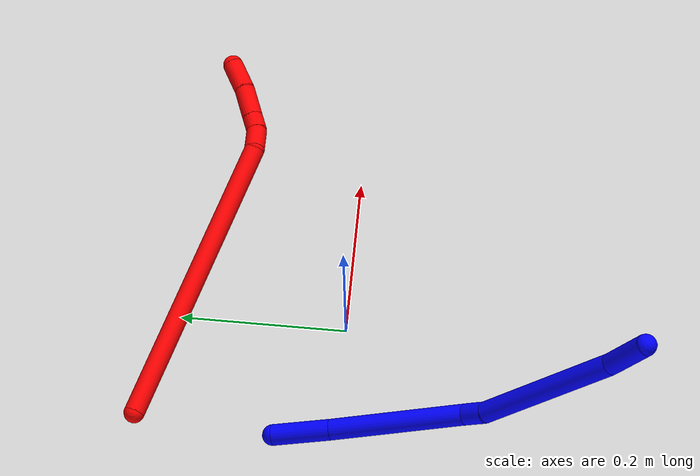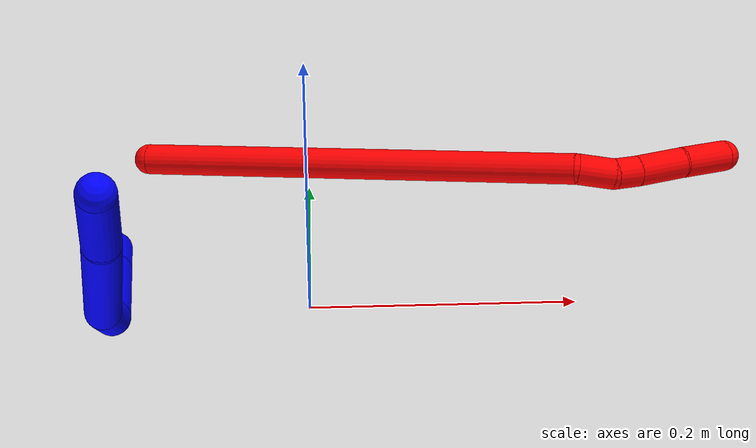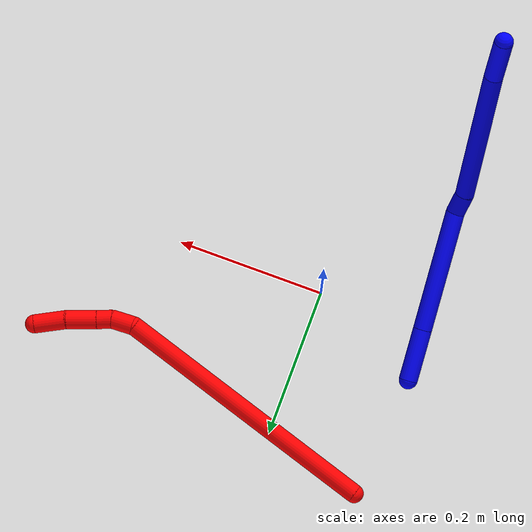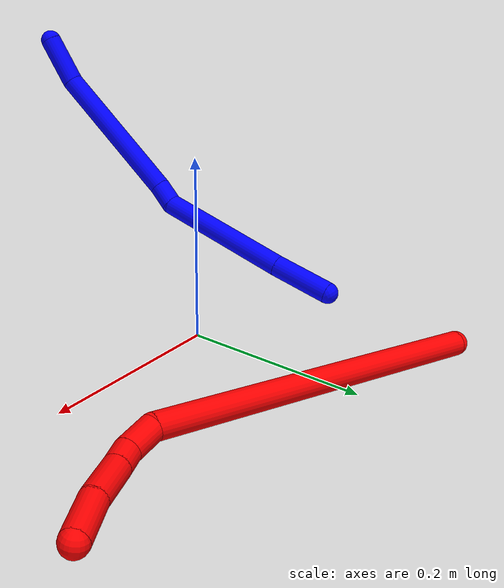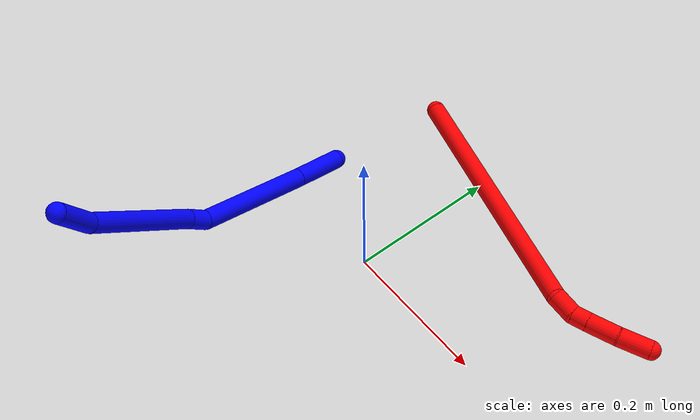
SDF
<sdf version="1.7">
 <world name="default">
  <plugin name="TubeGeneratorPlugin" filename="libtube_generator_plugin.so"/>
  <model name="photoneo_s_sensor">
   <static>1</static>
   <pose>0 0 2 1.57079 1.57079 3.14159</pose>
   <link name="link">
    <inertial><mass>0.1</mass></inertial>
    <sensor name="sensor" type="depth">
     <update_rate>30</update_rate>
     <camera>
      <horizontal_fov>1.22</horizontal_fov>
      <image><width>1920</width><height>1200</height><format>B8G8R8</format></image>
      <clip><near>0.1</near><far>4</far></clip>
      <depth_camera><output>points</output></depth_camera>
     </camera>
     <plugin name="camera_plugin" filename="libgazebo_ros_depth_camera.so">
      <baseline>0.2</baseline>
      <alwaysOn>1</alwaysOn>
      <updateRate>0.0</updateRate>
      <cameraName>camera_ir</cameraName>
      <imageTopicName>/camera/color/image_raw</imageTopicName>
      <cameraInfoTopicName>/camera/color/camera_info</cameraInfoTopicName>
      <depthImageTopicName>/camera/depth/image_raw</depthImageTopicName>
      <depthImageCameraInfoTopicName>/camera/depth/camera_info</depthImageCameraInfoTopicName>
      <pointCloudTopicName>/camera/depth/points</pointCloudTopicName>
      <frameName>fr_optical</frameName>
      <pointCloudCutoff>0.1</pointCloudCutoff>
      <pointCloudCutoffMax>2.0</pointCloudCutoffMax>
      <distortionK1>0</distortionK1>
      <distortionK2>0</distortionK2>
      <distortionK3>0</distortionK3>
      <distortionT1>0</distortionT1>
      <distortionT2>0</distortionT2>
      <CxPrime>0</CxPrime>
      <Cx>0</Cx>
      <Cy>0</Cy>
      <focalLength>0</focalLength>
      <hackBaseline>0</hackBaseline>
     </plugin>
    </sensor>
   </link>
  </model>
  <gravity>0 0 -9.8</gravity>
  <magnetic_field>6e-06 2.3e-05 -4.2e-05</magnetic_field>
  <atmosphere type="adiabatic"/>
  <physics name="default_physics" default="0" type="ode">
   <max_step_size>0.003</max_step_size>
   <real_time_factor>1</real_time_factor>
   <real_time_update_rate>1000</real_time_update_rate>
   <max_contacts>10000</max_contacts>
   <ode>
    <solver>
     <type>quick</type>
     <iters>100</iters>
     <sor>1.3</sor>
     <use_dynamic_moi_rescaling>0</use_dynamic_moi_rescaling>
    </solver>
    <constraints>
     <contact_max_correcting_vel>0</contact_max_correcting_vel>
     <contact_surface_layer>0.001</contact_surface_layer>
     <cfm>0</cfm>
     <erp>0.2</erp>
    </constraints>
   </ode>
  </physics>
  <scene><ambient>0.4 0.4 0.4 1</ambient><background>0.7 0.7 0.7 1</background><shadows>0</shadows></scene>
  <audio><device>default</device></audio>
  <spherical_coordinates>
   <surface_model>EARTH_WGS84</surface_model>
   <latitude_deg>0</latitude_deg>
   <longitude_deg>0</longitude_deg>
   <elevation>0</elevation>
   <heading_deg>0</heading_deg>
  </spherical_coordinates>
  <model name="bin">
   <static>1</static>
   <link name="bottom">
    <collision name="collision-bottom">
     <pose>0 0 -0.01 0 -0 0</pose>
     <geometry><box><size>0.8 0.6 0.02</size></box></geometry>
     <surface>
      <friction><ode><mu>100</mu><mu2>100</mu2></ode></friction>
      <contact><collide_bitmask>65535</collide_bitmask></contact>
     </surface>
    </collision>
   </link>
   <link name="west_wall">
    <collision name="collision-west_wall">
     <pose>-0.41 0 0.1 0 -0 0</pose>
     <geometry><box><size>0.02 0.6 0.2</size></box></geometry>
     <surface>
      <friction><ode><mu>100</mu><mu2>100</mu2></ode></friction>
      <contact><collide_bitmask>65535</collide_bitmask></contact>
     </surface>
    </collision>
   </link>
   <link name="east_wall">
    <collision name="collision-east_wall">
     <pose>0.41 0 0.1 0 -0 0</pose>
     <geometry><box><size>0.02 0.6 0.2</size></box></geometry>
     <surface>
      <friction><ode><mu>100</mu><mu2>100</mu2></ode></friction>
      <contact><collide_bitmask>65535</collide_bitmask></contact>
     </surface>
    </collision>
   </link>
   <link name="south_wall">
    <collision name="collision-south_wall">
     <pose>0 -0.31 0.1 0 -0 0</pose>
     <geometry><box><size>0.8 0.02 0.2</size></box></geometry>
     <surface>
      <friction><ode><mu>100</mu><mu2>100</mu2></ode></friction>
      <contact><collide_bitmask>65535</collide_bitmask></contact>
     </surface>
    </collision>
   </link>
   <link name="north_wall">
    <collision name="collision-north_wall">
     <pose>0 0.31 0.1 0 -0 0</pose>
     <geometry><box><size>0.8 0.02 0.2</size></box></geometry>
     <surface>
      <friction><ode><mu>100</mu><mu2>100</mu2></ode></friction>
      <contact><collide_bitmask>65535</collide_bitmask></contact>
     </surface>
    </collision>
   </link>
  </model>
  <model name="1">
   <static>0</static>
   <link name="1">
    <collision name="collision-cylinder-e_1_1_4">
     <pose>0.001286 0.002603 -0.030022 -3.05511 0.042643 -0.915867</pose>
     <geometry><cylinder><radius>0.0125</radius><length>0.060324</length></cylinder></geometry>
     <surface>
      <friction><ode><mu>1.16</mu><mu2>1.16</mu2><slip1>0</slip1><slip2>0</slip2></ode></friction>
      <contact><ode><kp>1e+06</kp><kd>1</kd><max_vel>0</max_vel><min_depth>0.001</min_depth></ode></contact>
     </surface>
    </collision>
    <visual name="visual-cylinder-e_1_1_4">
     <pose>0.001286 0.002603 -0.030022 -3.05511 0.042643 -0.915867</pose>
     <geometry><cylinder><radius>0.0125</radius><length>0.060324</length></cylinder></geometry>
     <material><ambient>0 0 1 1</ambient></material>
    </visual>
    <collision name="collision-cylinder-e_2_4_5">
     <pose>-0.000971 0.03255 -0.145047 -2.83036 -0.039655 0.251463</pose>
     <geometry><cylinder><radius>0.0125</radius><length>0.178725</length></cylinder></geometry>
     <surface>
      <friction><ode><mu>1.16</mu><mu2>1.16</mu2><slip1>0</slip1><slip2>0</slip2></ode></friction>
      <contact><ode><kp>1e+06</kp><kd>1</kd><max_vel>0</max_vel><min_depth>0.001</min_depth></ode></contact>
     </surface>
    </collision>
    <visual name="visual-cylinder-e_2_4_5">
     <pose>-0.000971 0.03255 -0.145047 -2.83036 -0.039655 0.251463</pose>
     <geometry><cylinder><radius>0.0125</radius><length>0.178725</length></cylinder></geometry>
     <material><ambient>0 0 1 1</ambient></material>
    </visual>
    <collision name="collision-cylinder-e_3_5_6">
     <pose>-0.002209 0.065685 -0.243154 -2.7255 0.159491 -0.723787</pose>
     <geometry><cylinder><radius>0.0125</radius><length>0.029023</length></cylinder></geometry>
     <surface>
      <friction><ode><mu>1.16</mu><mu2>1.16</mu2><slip1>0</slip1><slip2>0</slip2></ode></friction>
      <contact><ode><kp>1e+06</kp><kd>1</kd><max_vel>0</max_vel><min_depth>0.001</min_depth></ode></contact>
     </surface>
    </collision>
    <visual name="visual-cylinder-e_3_5_6">
     <pose>-0.002209 0.065685 -0.243154 -2.7255 0.159491 -0.723787</pose>
     <geometry><cylinder><radius>0.0125</radius><length>0.029023</length></cylinder></geometry>
     <material><ambient>0 0 1 1</ambient></material>
    </visual>
    <collision name="collision-cylinder-e_4_6_7">
     <pose>-0.007213 0.12623 -0.315272 -2.39362 -0.090536 0.22983</pose>
     <geometry><cylinder><radius>0.0125</radius><length>0.161667</length></cylinder></geometry>
     <surface>
      <friction><ode><mu>1.16</mu><mu2>1.16</mu2><slip1>0</slip1><slip2>0</slip2></ode></friction>
      <contact><ode><kp>1e+06</kp><kd>1</kd><max_vel>0</max_vel><min_depth>0.001</min_depth></ode></contact>
     </surface>
    </collision>
    <visual name="visual-cylinder-e_4_6_7">
     <pose>-0.007213 0.12623 -0.315272 -2.39362 -0.090536 0.22983</pose>
     <geometry><cylinder><radius>0.0125</radius><length>0.161667</length></cylinder></geometry>
     <material><ambient>0 0 1 1</ambient></material>
    </visual>
    <collision name="collision-cylinder-e_5_7_2">
     <pose>-0.01788 0.205853 -0.398871 -2.35046 -0.095749 0.228472</pose>
     <geometry><cylinder><radius>0.0125</radius><length>0.070261</length></cylinder></geometry>
     <surface>
      <friction><ode><mu>1.16</mu><mu2>1.16</mu2><slip1>0</slip1><slip2>0</slip2></ode></friction>
      <contact><ode><kp>1e+06</kp><kd>1</kd><max_vel>0</max_vel><min_depth>0.001</min_depth></ode></contact>
     </surface>
    </collision>
    <visual name="visual-cylinder-e_5_7_2">
     <pose>-0.01788 0.205853 -0.398871 -2.35046 -0.095749 0.228472</pose>
     <geometry><cylinder><radius>0.0125</radius><length>0.070261</length></cylinder></geometry>
     <material><ambient>0 0 1 1</ambient></material>
    </visual>
    <collision name="collision-sphere-2">
     <pose>-0.021238 0.230721 -0.423456 0 -0 0</pose>
     <geometry><sphere><radius>0.0125</radius></sphere></geometry>
     <surface>
      <friction><ode><mu>1.16</mu><mu2>1.16</mu2><slip1>0</slip1><slip2>0</slip2></ode></friction>
      <contact><ode><kp>1e+06</kp><kd>1</kd><max_vel>0</max_vel><min_depth>0.001</min_depth></ode></contact>
     </surface>
    </collision>
    <visual name="visual-sphere-2">
     <pose>-0.021238 0.230721 -0.423456 0 -0 0</pose>
     <geometry><sphere><radius>0.0125</radius></sphere></geometry>
     <material><ambient>0 0 1 1</ambient></material>
    </visual>
    <collision name="collision-sphere-7">
     <pose>-0.014521 0.180984 -0.374286 0 -0 0</pose>
     <geometry><sphere><radius>0.0125</radius></sphere></geometry>
     <surface>
      <friction><ode><mu>1.16</mu><mu2>1.16</mu2><slip1>0</slip1><slip2>0</slip2></ode></friction>
      <contact><ode><kp>1e+06</kp><kd>1</kd><max_vel>0</max_vel><min_depth>0.001</min_depth></ode></contact>
     </surface>
    </collision>
    <visual name="visual-sphere-7">
     <pose>-0.014521 0.180984 -0.374286 0 -0 0</pose>
     <geometry><sphere><radius>0.0125</radius></sphere></geometry>
     <material><ambient>0 0 1 1</ambient></material>
    </visual>
    <collision name="collision-sphere-6">
     <pose>9.6e-05 0.071475 -0.256259 0 -0 0</pose>
     <geometry><sphere><radius>0.0125</radius></sphere></geometry>
     <surface>
      <friction><ode><mu>1.16</mu><mu2>1.16</mu2><slip1>0</slip1><slip2>0</slip2></ode></friction>
      <contact><ode><kp>1e+06</kp><kd>1</kd><max_vel>0</max_vel><min_depth>0.001</min_depth></ode></contact>
     </surface>
    </collision>
    <visual name="visual-sphere-6">
     <pose>9.6e-05 0.071475 -0.256259 0 -0 0</pose>
     <geometry><sphere><radius>0.0125</radius></sphere></geometry>
     <material><ambient>0 0 1 1</ambient></material>
    </visual>
    <collision name="collision-sphere-5">
     <pose>-0.004514 0.059894 -0.230049 0 -0 0</pose>
     <geometry><sphere><radius>0.0125</radius></sphere></geometry>
     <surface>
      <friction><ode><mu>1.16</mu><mu2>1.16</mu2><slip1>0</slip1><slip2>0</slip2></ode></friction>
      <contact><ode><kp>1e+06</kp><kd>1</kd><max_vel>0</max_vel><min_depth>0.001</min_depth></ode></contact>
     </surface>
    </collision>
    <visual name="visual-sphere-5">
     <pose>-0.004514 0.059894 -0.230049 0 -0 0</pose>
     <geometry><sphere><radius>0.0125</radius></sphere></geometry>
     <material><ambient>0 0 1 1</ambient></material>
    </visual>
    <collision name="collision-sphere-1">
     <geometry><sphere><radius>0.0125</radius></sphere></geometry>
     <surface>
      <friction><ode><mu>1.16</mu><mu2>1.16</mu2><slip1>0</slip1><slip2>0</slip2></ode></friction>
      <contact><ode><kp>1e+06</kp><kd>1</kd><max_vel>0</max_vel><min_depth>0.001</min_depth></ode></contact>
     </surface>
    </collision>
    <visual name="visual-sphere-1">
     <geometry><sphere><radius>0.0125</radius></sphere></geometry>
     <material><ambient>0 0 1 1</ambient></material>
    </visual>
    <collision name="collision-sphere-4">
     <pose>0.002572 0.005205 -0.060044 0 -0 0</pose>
     <geometry><sphere><radius>0.0125</radius></sphere></geometry>
     <surface>
      <friction><ode><mu>1.16</mu><mu2>1.16</mu2><slip1>0</slip1><slip2>0</slip2></ode></friction>
      <contact><ode><kp>1e+06</kp><kd>1</kd><max_vel>0</max_vel><min_depth>0.001</min_depth></ode></contact>
     </surface>
    </collision>
    <visual name="visual-sphere-4">
     <pose>0.002572 0.005205 -0.060044 0 -0 0</pose>
     <geometry><sphere><radius>0.0125</radius></sphere></geometry>
     <material><ambient>0 0 1 1</ambient></material>
    </visual>
    <inertial>
     <pose>-0.005165 0.085503 -0.227571 0 -0 0</pose>
     <mass>0.5</mass>
     <inertia>
      <ixx>0.001049</ixx>
      <ixy>0</ixy>
      <ixz>0</ixz>
      <iyy>-0.000522</iyy>
      <iyz>0</iyz>
      <izz>-0.000396</izz>
     </inertia>
    </inertial>
   </link>
   <pose>-0.114519 -0.338159 0.270739 0.502232 0.150068 -0.061965</pose>
  </model>
  <model name="2">
   <static>0</static>
   <link name="2">
    <collision name="collision-cylinder-e_1_1_4">
     <pose>0.179731 -0.027882 0.013623 1.11633 1.39982 0.968194</pose>
     <geometry><cylinder><radius>0.0125</radius><length>0.364782</length></cylinder></geometry>
     <surface>
      <friction><ode><mu>1.16</mu><mu2>1.16</mu2><slip1>0</slip1><slip2>0</slip2></ode></friction>
      <contact><ode><kp>1e+06</kp><kd>1</kd><max_vel>0</max_vel><min_depth>0.001</min_depth></ode></contact>
     </surface>
    </collision>
    <visual name="visual-cylinder-e_1_1_4">
     <pose>0.179731 -0.027882 0.013623 1.11633 1.39982 0.968194</pose>
     <geometry><cylinder><radius>0.0125</radius><length>0.364782</length></cylinder></geometry>
     <material><ambient>1 0 0 1</ambient></material>
    </visual>
    <collision name="collision-cylinder-e_2_4_5">
     <pose>0.372272 -0.062632 0.032314 0.934941 0.983031 0.527854</pose>
     <geometry><cylinder><radius>0.0125</radius><length>0.030785</length></cylinder></geometry>
     <surface>
      <friction><ode><mu>1.16</mu><mu2>1.16</mu2><slip1>0</slip1><slip2>0</slip2></ode></friction>
      <contact><ode><kp>1e+06</kp><kd>1</kd><max_vel>0</max_vel><min_depth>0.001</min_depth></ode></contact>
     </surface>
    </collision>
    <visual name="visual-cylinder-e_2_4_5">
     <pose>0.372272 -0.062632 0.032314 0.934941 0.983031 0.527854</pose>
     <geometry><cylinder><radius>0.0125</radius><length>0.030785</length></cylinder></geometry>
     <material><ambient>1 0 0 1</ambient></material>
    </visual>
    <collision name="collision-cylinder-e_3_5_6">
     <pose>0.392138 -0.077086 0.039337 1.31873 0.733176 0.578488</pose>
     <geometry><cylinder><radius>0.0125</radius><length>0.021087</length></cylinder></geometry>
     <surface>
      <friction><ode><mu>1.16</mu><mu2>1.16</mu2><slip1>0</slip1><slip2>0</slip2></ode></friction>
      <contact><ode><kp>1e+06</kp><kd>1</kd><max_vel>0</max_vel><min_depth>0.001</min_depth></ode></contact>
     </surface>
    </collision>
    <visual name="visual-cylinder-e_3_5_6">
     <pose>0.392138 -0.077086 0.039337 1.31873 0.733176 0.578488</pose>
     <geometry><cylinder><radius>0.0125</radius><length>0.021087</length></cylinder></geometry>
     <material><ambient>1 0 0 1</ambient></material>
    </visual>
    <collision name="collision-cylinder-e_4_6_7">
     <pose>0.413232 -0.099442 0.043782 1.40367 0.753008 0.645156</pose>
     <geometry><cylinder><radius>0.0125</radius><length>0.041056</length></cylinder></geometry>
     <surface>
      <friction><ode><mu>1.16</mu><mu2>1.16</mu2><slip1>0</slip1><slip2>0</slip2></ode></friction>
      <contact><ode><kp>1e+06</kp><kd>1</kd><max_vel>0</max_vel><min_depth>0.001</min_depth></ode></contact>
     </surface>
    </collision>
    <visual name="visual-cylinder-e_4_6_7">
     <pose>0.413232 -0.099442 0.043782 1.40367 0.753008 0.645156</pose>
     <geometry><cylinder><radius>0.0125</radius><length>0.041056</length></cylinder></geometry>
     <material><ambient>1 0 0 1</ambient></material>
    </visual>
    <collision name="collision-cylinder-e_5_7_2">
     <pose>0.439488 -0.130974 0.05038 1.33058 0.616085 0.489284</pose>
     <geometry><cylinder><radius>0.0125</radius><length>0.04229</length></cylinder></geometry>
     <surface>
      <friction><ode><mu>1.16</mu><mu2>1.16</mu2><slip1>0</slip1><slip2>0</slip2></ode></friction>
      <contact><ode><kp>1e+06</kp><kd>1</kd><max_vel>0</max_vel><min_depth>0.001</min_depth></ode></contact>
     </surface>
    </collision>
    <visual name="visual-cylinder-e_5_7_2">
     <pose>0.439488 -0.130974 0.05038 1.33058 0.616085 0.489284</pose>
     <geometry><cylinder><radius>0.0125</radius><length>0.04229</length></cylinder></geometry>
     <material><ambient>1 0 0 1</ambient></material>
    </visual>
    <collision name="collision-sphere-2">
     <pose>0.451707 -0.147735 0.054485 0 -0 0</pose>
     <geometry><sphere><radius>0.0125</radius></sphere></geometry>
     <surface>
      <friction><ode><mu>1.16</mu><mu2>1.16</mu2><slip1>0</slip1><slip2>0</slip2></ode></friction>
      <contact><ode><kp>1e+06</kp><kd>1</kd><max_vel>0</max_vel><min_depth>0.001</min_depth></ode></contact>
     </surface>
    </collision>
    <visual name="visual-sphere-2">
     <pose>0.451707 -0.147735 0.054485 0 -0 0</pose>
     <geometry><sphere><radius>0.0125</radius></sphere></geometry>
     <material><ambient>1 0 0 1</ambient></material>
    </visual>
    <collision name="collision-sphere-7">
     <pose>0.42727 -0.114212 0.046274 0 -0 0</pose>
     <geometry><sphere><radius>0.0125</radius></sphere></geometry>
     <surface>
      <friction><ode><mu>1.16</mu><mu2>1.16</mu2><slip1>0</slip1><slip2>0</slip2></ode></friction>
      <contact><ode><kp>1e+06</kp><kd>1</kd><max_vel>0</max_vel><min_depth>0.001</min_depth></ode></contact>
     </surface>
    </collision>
    <visual name="visual-sphere-7">
     <pose>0.42727 -0.114212 0.046274 0 -0 0</pose>
     <geometry><sphere><radius>0.0125</radius></sphere></geometry>
     <material><ambient>1 0 0 1</ambient></material>
    </visual>
    <collision name="collision-sphere-6">
     <pose>0.399194 -0.084673 0.041291 0 -0 0</pose>
     <geometry><sphere><radius>0.0125</radius></sphere></geometry>
     <surface>
      <friction><ode><mu>1.16</mu><mu2>1.16</mu2><slip1>0</slip1><slip2>0</slip2></ode></friction>
      <contact><ode><kp>1e+06</kp><kd>1</kd><max_vel>0</max_vel><min_depth>0.001</min_depth></ode></contact>
     </surface>
    </collision>
    <visual name="visual-sphere-6">
     <pose>0.399194 -0.084673 0.041291 0 -0 0</pose>
     <geometry><sphere><radius>0.0125</radius></sphere></geometry>
     <material><ambient>1 0 0 1</ambient></material>
    </visual>
    <collision name="collision-sphere-5">
     <pose>0.385082 -0.069499 0.037383 0 -0 0</pose>
     <geometry><sphere><radius>0.0125</radius></sphere></geometry>
     <surface>
      <friction><ode><mu>1.16</mu><mu2>1.16</mu2><slip1>0</slip1><slip2>0</slip2></ode></friction>
      <contact><ode><kp>1e+06</kp><kd>1</kd><max_vel>0</max_vel><min_depth>0.001</min_depth></ode></contact>
     </surface>
    </collision>
    <visual name="visual-sphere-5">
     <pose>0.385082 -0.069499 0.037383 0 -0 0</pose>
     <geometry><sphere><radius>0.0125</radius></sphere></geometry>
     <material><ambient>1 0 0 1</ambient></material>
    </visual>
    <collision name="collision-sphere-1">
     <geometry><sphere><radius>0.0125</radius></sphere></geometry>
     <surface>
      <friction><ode><mu>1.16</mu><mu2>1.16</mu2><slip1>0</slip1><slip2>0</slip2></ode></friction>
      <contact><ode><kp>1e+06</kp><kd>1</kd><max_vel>0</max_vel><min_depth>0.001</min_depth></ode></contact>
     </surface>
    </collision>
    <visual name="visual-sphere-1">
     <geometry><sphere><radius>0.0125</radius></sphere></geometry>
     <material><ambient>1 0 0 1</ambient></material>
    </visual>
    <collision name="collision-sphere-4">
     <pose>0.359463 -0.055765 0.027245 0 -0 0</pose>
     <geometry><sphere><radius>0.0125</radius></sphere></geometry>
     <surface>
      <friction><ode><mu>1.16</mu><mu2>1.16</mu2><slip1>0</slip1><slip2>0</slip2></ode></friction>
      <contact><ode><kp>1e+06</kp><kd>1</kd><max_vel>0</max_vel><min_depth>0.001</min_depth></ode></contact>
     </surface>
    </collision>
    <visual name="visual-sphere-4">
     <pose>0.359463 -0.055765 0.027245 0 -0 0</pose>
     <geometry><sphere><radius>0.0125</radius></sphere></geometry>
     <material><ambient>1 0 0 1</ambient></material>
    </visual>
    <inertial>
     <pose>0.241688 -0.046693 0.021443 0 -0 0</pose>
     <mass>0.5</mass>
     <inertia>
      <ixx>0.001016</ixx>
      <ixy>0</ixy>
      <ixz>0</ixz>
      <iyy>0.004548</iyy>
      <iyz>0</iyz>
      <izz>-0.003375</izz>
     </inertia>
    </inertial>
   </link>
   <pose>-0.133678 0.23704 0.012083 3.13857 -0.169779 -0.4439</pose>
  </model>
 </world>
</sdf>
